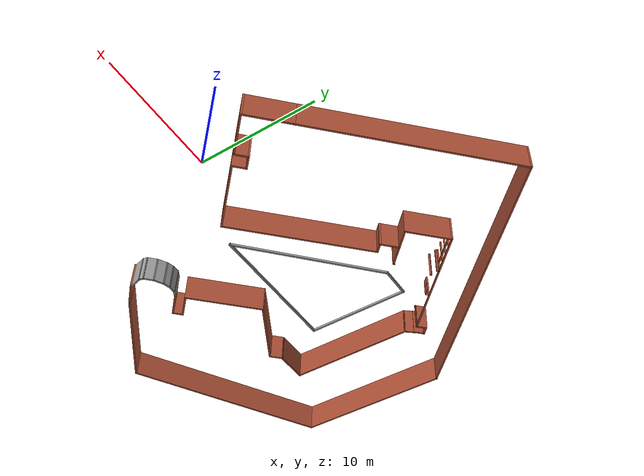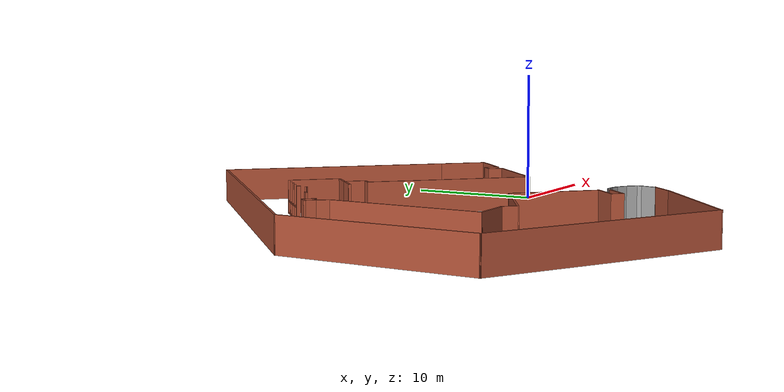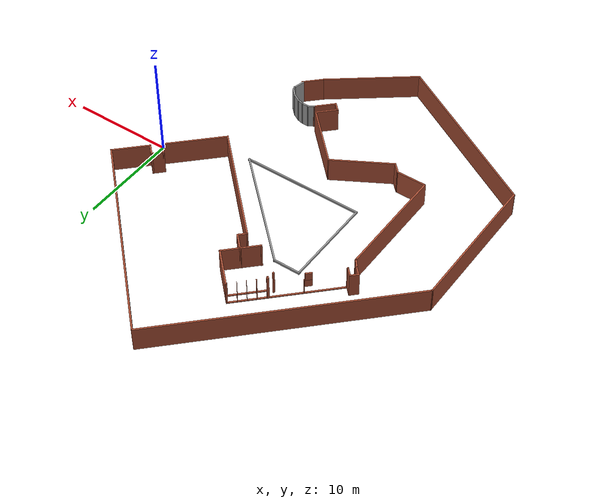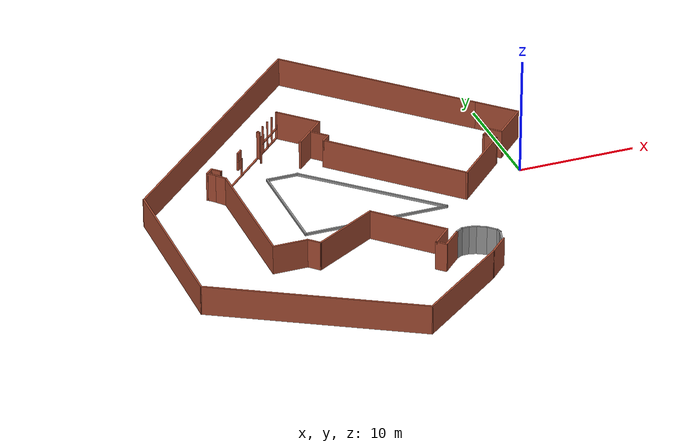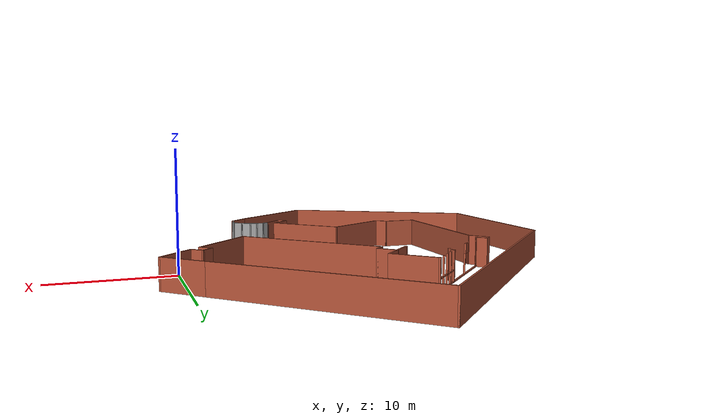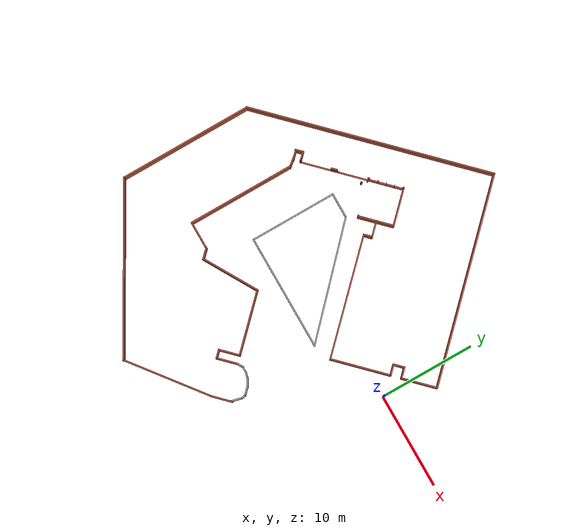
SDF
<?xml version='1.0'?>
<sdf version='1.6'>
  <model name='BusEngI'>
    <pose frame=''>-14.665 0.052975 0 0 -0 0</pose>
    <link name='Wall_137'>
      <pose frame=''>-3.28805 10.6093 0 0 -0 0.785398</pose>
      <visual name='Wall_137_Visual_0'>
        <pose frame=''>-1.7627 0 1.25 0 -0 0</pose>
        <geometry>
          <box>
            <size>0.224593 0.15 2.5</size>
          </box>
        </geometry>
        <material>
          <script>
            <uri>file://media/materials/scripts/gazebo.material</uri>
            <name>Gazebo/Bricks</name>
          </script>
          <ambient>1 1 1 1</ambient>
        </material>
        <meta>
          <layer>0</layer>
        </meta>
      </visual>
      <collision name='Wall_137_Collision_0'>
        <geometry>
          <box>
            <size>0.224593 0.15 2.5</size>
          </box>
        </geometry>
        <pose frame=''>-1.7627 0 1.25 0 -0 0</pose>
      </collision>
      <visual name='Wall_137_Visual_1'>
        <pose frame=''>0.112296 0 0.05 0 -0 0</pose>
        <geometry>
          <box>
            <size>3.52541 0.15 0.1</size>
          </box>
        </geometry>
        <material>
          <script>
            <uri>file://media/materials/scripts/gazebo.material</uri>
            <name>Gazebo/Bricks</name>
          </script>
          <ambient>1 1 1 1</ambient>
        </material>
        <meta>
          <layer>0</layer>
        </meta>
      </visual>
      <collision name='Wall_137_Collision_1'>
        <geometry>
          <box>
            <size>3.52541 0.15 0.1</size>
          </box>
        </geometry>
        <pose frame=''>0.112296 0 0.05 0 -0 0</pose>
      </collision>
      <visual name='Wall_137_Visual_2'>
        <pose frame=''>-0.809097 0 1.3 0 -0 0</pose>
        <geometry>
          <box>
            <size>0.082621 0.15 2.4</size>
          </box>
        </geometry>
        <material>
          <script>
            <uri>file://media/materials/scripts/gazebo.material</uri>
            <name>Gazebo/Bricks</name>
          </script>
          <ambient>1 1 1 1</ambient>
        </material>
        <meta>
          <layer>0</layer>
        </meta>
      </visual>
      <collision name='Wall_137_Collision_2'>
        <geometry>
          <box>
            <size>0.082621 0.15 2.4</size>
          </box>
        </geometry>
        <pose frame=''>-0.809097 0 1.3 0 -0 0</pose>
      </collision>
      <visual name='Wall_137_Visual_3'>
        <pose frame=''>0.045943 0 1.3 0 -0 0</pose>
        <geometry>
          <box>
            <size>0.027458 0.15 2.4</size>
          </box>
        </geometry>
        <material>
          <script>
            <uri>file://media/materials/scripts/gazebo.material</uri>
            <name>Gazebo/Bricks</name>
          </script>
          <ambient>1 1 1 1</ambient>
        </material>
        <meta>
          <layer>0</layer>
        </meta>
      </visual>
      <collision name='Wall_137_Collision_3'>
        <geometry>
          <box>
            <size>0.027458 0.15 2.4</size>
          </box>
        </geometry>
        <pose frame=''>0.045943 0 1.3 0 -0 0</pose>
      </collision>
      <visual name='Wall_137_Visual_4'>
        <pose frame=''>0.8734 0 1.3 0 -0 0</pose>
        <geometry>
          <box>
            <size>0.027457 0.15 2.4</size>
          </box>
        </geometry>
        <material>
          <script>
            <uri>file://media/materials/scripts/gazebo.material</uri>
            <name>Gazebo/Bricks</name>
          </script>
          <ambient>1 1 1 1</ambient>
        </material>
        <meta>
          <layer>0</layer>
        </meta>
      </visual>
      <collision name='Wall_137_Collision_4'>
        <geometry>
          <box>
            <size>0.027457 0.15 2.4</size>
          </box>
        </geometry>
        <pose frame=''>0.8734 0 1.3 0 -0 0</pose>
      </collision>
      <visual name='Wall_137_Visual_5'>
        <pose frame=''>1.79486 0 1.3 0 -0 0</pose>
        <geometry>
          <box>
            <size>0.16029 0.15 2.4</size>
          </box>
        </geometry>
        <material>
          <script>
            <uri>file://media/materials/scripts/gazebo.material</uri>
            <name>Gazebo/Bricks</name>
          </script>
          <ambient>1 1 1 1</ambient>
        </material>
        <meta>
          <layer>0</layer>
        </meta>
      </visual>
      <collision name='Wall_137_Collision_5'>
        <geometry>
          <box>
            <size>0.16029 0.15 2.4</size>
          </box>
        </geometry>
        <pose frame=''>1.79486 0 1.3 0 -0 0</pose>
      </collision>
      <visual name='Wall_137_Visual_6'>
        <pose frame=''>0.900919 0 0.55 0 -0 0</pose>
        <geometry>
          <box>
            <size>0.027581 0.15 0.9</size>
          </box>
        </geometry>
        <material>
          <script>
            <uri>file://media/materials/scripts/gazebo.material</uri>
            <name>Gazebo/Bricks</name>
          </script>
          <ambient>1 1 1 1</ambient>
        </material>
        <meta>
          <layer>0</layer>
        </meta>
      </visual>
      <collision name='Wall_137_Collision_6'>
        <geometry>
          <box>
            <size>0.027581 0.15 0.9</size>
          </box>
        </geometry>
        <pose frame=''>0.900919 0 0.55 0 -0 0</pose>
      </collision>
      <visual name='Wall_137_Visual_7'>
        <pose frame=''>-1.25041 0 0.95 0 -0 0</pose>
        <geometry>
          <box>
            <size>0.8 0.15 0.1</size>
          </box>
        </geometry>
        <material>
          <script>
            <uri>file://media/materials/scripts/gazebo.material</uri>
            <name>Gazebo/Bricks</name>
          </script>
          <ambient>1 1 1 1</ambient>
        </material>
        <meta>
          <layer>0</layer>
        </meta>
      </visual>
      <collision name='Wall_137_Collision_7'>
        <geometry>
          <box>
            <size>0.8 0.15 0.1</size>
          </box>
        </geometry>
        <pose frame=''>-1.25041 0 0.95 0 -0 0</pose>
      </collision>
      <visual name='Wall_137_Visual_8'>
        <pose frame=''>-0.367786 0 0.95 0 -0 0</pose>
        <geometry>
          <box>
            <size>0.8 0.15 0.1</size>
          </box>
        </geometry>
        <material>
          <script>
            <uri>file://media/materials/scripts/gazebo.material</uri>
            <name>Gazebo/Bricks</name>
          </script>
          <ambient>1 1 1 1</ambient>
        </material>
        <meta>
          <layer>0</layer>
        </meta>
      </visual>
      <collision name='Wall_137_Collision_8'>
        <geometry>
          <box>
            <size>0.8 0.15 0.1</size>
          </box>
        </geometry>
        <pose frame=''>-0.367786 0 0.95 0 -0 0</pose>
      </collision>
      <visual name='Wall_137_Visual_9'>
        <pose frame=''>0.459672 0 0.95 0 -0 0</pose>
        <geometry>
          <box>
            <size>0.8 0.15 0.1</size>
          </box>
        </geometry>
        <material>
          <script>
            <uri>file://media/materials/scripts/gazebo.material</uri>
            <name>Gazebo/Bricks</name>
          </script>
          <ambient>1 1 1 1</ambient>
        </material>
        <meta>
          <layer>0</layer>
        </meta>
      </visual>
      <collision name='Wall_137_Collision_9'>
        <geometry>
          <box>
            <size>0.8 0.15 0.1</size>
          </box>
        </geometry>
        <pose frame=''>0.459672 0 0.95 0 -0 0</pose>
      </collision>
      <visual name='Wall_137_Visual_10'>
        <pose frame=''>1.31471 0 0.95 0 -0 0</pose>
        <geometry>
          <box>
            <size>0.8 0.15 0.1</size>
          </box>
        </geometry>
        <material>
          <script>
            <uri>file://media/materials/scripts/gazebo.material</uri>
            <name>Gazebo/Bricks</name>
          </script>
          <ambient>1 1 1 1</ambient>
        </material>
        <meta>
          <layer>0</layer>
        </meta>
      </visual>
      <collision name='Wall_137_Collision_10'>
        <geometry>
          <box>
            <size>0.8 0.15 0.1</size>
          </box>
        </geometry>
        <pose frame=''>1.31471 0 0.95 0 -0 0</pose>
      </collision>
      <visual name='Wall_137_Visual_11'>
        <pose frame=''>1.70092 0 1.75 0 -0 0</pose>
        <geometry>
          <box>
            <size>0.027581 0.15 1.5</size>
          </box>
        </geometry>
        <material>
          <script>
            <uri>file://media/materials/scripts/gazebo.material</uri>
            <name>Gazebo/Bricks</name>
          </script>
          <ambient>1 1 1 1</ambient>
        </material>
        <meta>
          <layer>0</layer>
        </meta>
      </visual>
      <collision name='Wall_137_Collision_11'>
        <geometry>
          <box>
            <size>0.027581 0.15 1.5</size>
          </box>
        </geometry>
        <pose frame=''>1.70092 0 1.75 0 -0 0</pose>
      </collision>
    </link>
    <link name='Wall_138'>
      <collision name='Wall_138_Collision'>
        <geometry>
          <box>
            <size>4 0.15 2.5</size>
          </box>
        </geometry>
        <pose frame=''>0 0 1.25 0 -0 0</pose>
      </collision>
      <visual name='Wall_138_Visual'>
        <pose frame=''>0 0 1.25 0 -0 0</pose>
        <geometry>
          <box>
            <size>4 0.15 2.5</size>
          </box>
        </geometry>
        <material>
          <script>
            <uri>file://media/materials/scripts/gazebo.material</uri>
            <name>Gazebo/Bricks</name>
          </script>
          <ambient>1 1 1 1</ambient>
        </material>
        <meta>
          <layer>0</layer>
        </meta>
      </visual>
      <pose frame=''>-0.654075 10.5209 0 0 0 -0.785398</pose>
    </link>
    <link name='Wall_139'>
      <collision name='Wall_139_Collision'>
        <geometry>
          <box>
            <size>1.9 0.15 2.5</size>
          </box>
        </geometry>
        <pose frame=''>0 0 1.25 0 -0 0</pose>
      </collision>
      <visual name='Wall_139_Visual'>
        <pose frame=''>0 0 1.25 0 -0 0</pose>
        <geometry>
          <box>
            <size>1.9 0.15 2.5</size>
          </box>
        </geometry>
        <material>
          <script>
            <uri>file://media/materials/scripts/gazebo.material</uri>
            <name>Gazebo/Bricks</name>
          </script>
          <ambient>1 1 1 1</ambient>
        </material>
        <meta>
          <layer>0</layer>
        </meta>
      </visual>
      <pose frame=''>0.088388 8.54098 0 0 0 -2.35619</pose>
    </link>
    <link name='Wall_19'>
      <collision name='Wall_19_Collision'>
        <geometry>
          <box>
            <size>0.15 0.15 2.5</size>
          </box>
        </geometry>
        <pose frame=''>0 0 1.25 0 -0 0</pose>
      </collision>
      <visual name='Wall_19_Visual'>
        <pose frame=''>0 0 1.25 0 -0 0</pose>
        <geometry>
          <box>
            <size>0.15 0.15 2.5</size>
          </box>
        </geometry>
        <material>
          <script>
            <uri>file://media/materials/scripts/gazebo.material</uri>
            <name>Gazebo/Bricks</name>
          </script>
          <ambient>1 1 1 1</ambient>
        </material>
        <meta>
          <layer>0</layer>
        </meta>
      </visual>
      <pose frame=''>-4.56098 8.57072 0 0 -0 0</pose>
    </link>
    <link name='Wall_225'>
      <collision name='Wall_225_Collision'>
        <geometry>
          <box>
            <size>18 0.15 2.5</size>
          </box>
        </geometry>
        <pose frame=''>0 0 1.25 0 -0 0</pose>
      </collision>
      <visual name='Wall_225_Visual'>
        <pose frame=''>0 0 1.25 0 -0 0</pose>
        <geometry>
          <box>
            <size>18 0.15 2.5</size>
          </box>
        </geometry>
        <material>
          <script>
            <uri>file://media/materials/scripts/gazebo.material</uri>
            <name>Gazebo/Bricks</name>
          </script>
          <ambient>1 1 1 1</ambient>
        </material>
        <meta>
          <layer>0</layer>
        </meta>
      </visual>
      <pose frame=''>7.51301 13.9503 0 0 -0 2.35619</pose>
    </link>
    <link name='Wall_226'>
      <collision name='Wall_226_Collision'>
        <geometry>
          <box>
            <size>25.25 0.15 2.5</size>
          </box>
        </geometry>
        <pose frame=''>0 0 1.25 0 -0 0</pose>
      </collision>
      <visual name='Wall_226_Visual'>
        <pose frame=''>0 0 1.25 0 -0 0</pose>
        <geometry>
          <box>
            <size>25.25 0.15 2.5</size>
          </box>
        </geometry>
        <material>
          <script>
            <uri>file://media/materials/scripts/gazebo.material</uri>
            <name>Gazebo/Bricks</name>
          </script>
          <ambient>1 1 1 1</ambient>
        </material>
        <meta>
          <layer>0</layer>
        </meta>
      </visual>
      <pose frame=''>-7.67211 11.3871 0 0 0 -2.35619</pose>
    </link>
    <link name='Wall_227'>
      <collision name='Wall_227_Collision'>
        <geometry>
          <box>
            <size>14 0.15 2.5</size>
          </box>
        </geometry>
        <pose frame=''>0 0 1.25 0 -0 0</pose>
      </collision>
      <visual name='Wall_227_Visual'>
        <pose frame=''>0 0 1.25 0 -0 0</pose>
        <geometry>
          <box>
            <size>14 0.15 2.5</size>
          </box>
        </geometry>
        <material>
          <script>
            <uri>file://media/materials/scripts/gazebo.material</uri>
            <name>Gazebo/Bricks</name>
          </script>
          <ambient>1 1 1 1</ambient>
        </material>
        <meta>
          <layer>0</layer>
        </meta>
      </visual>
      <pose frame=''>-16.5463 -4.41211 0 0 0 -1.5708</pose>
    </link>
    <link name='Wall_228'>
      <collision name='Wall_228_Collision'>
        <geometry>
          <box>
            <size>18 0.15 2.5</size>
          </box>
        </geometry>
        <pose frame=''>0 0 1.25 0 -0 0</pose>
      </collision>
      <visual name='Wall_228_Visual'>
        <pose frame=''>0 0 1.25 0 -0 0</pose>
        <geometry>
          <box>
            <size>18 0.15 2.5</size>
          </box>
        </geometry>
        <material>
          <script>
            <uri>file://media/materials/scripts/gazebo.material</uri>
            <name>Gazebo/Bricks</name>
          </script>
          <ambient>1 1 1 1</ambient>
        </material>
        <meta>
          <layer>0</layer>
        </meta>
      </visual>
      <pose frame=''>-8.81702 -15.7996 0 0 0 -0.523599</pose>
    </link>
    <link name='Wall_229'>
      <collision name='Wall_229_Collision'>
        <geometry>
          <box>
            <size>9.44818 0.15 2.5</size>
          </box>
        </geometry>
        <pose frame=''>0 0 1.25 0 -0 0</pose>
      </collision>
      <visual name='Wall_229_Visual'>
        <pose frame=''>0 0 1.25 0 -0 0</pose>
        <geometry>
          <box>
            <size>9.44818 0.15 2.5</size>
          </box>
        </geometry>
        <material>
          <script>
            <uri>file://media/materials/scripts/gazebo.material</uri>
            <name>Gazebo/Bricks</name>
          </script>
          <ambient>1 1 1 1</ambient>
        </material>
        <meta>
          <layer>0</layer>
        </meta>
      </visual>
      <pose frame=''>2.58674 -17.4139 0 0 -0 0.659388</pose>
    </link>
    <link name='Wall_357'>
      <pose frame=''>-3.19966 7.97529 0 0 0 -0.785398</pose>
      <visual name='Wall_357_Visual_0'>
        <pose frame=''>-1.84824 0 1.25 0 -0 0</pose>
        <geometry>
          <box>
            <size>0.303512 0.15 2.5</size>
          </box>
        </geometry>
        <material>
          <script>
            <uri>file://media/materials/scripts/gazebo.material</uri>
            <name>Gazebo/Bricks</name>
          </script>
          <ambient>1 1 1 1</ambient>
        </material>
        <meta>
          <layer>0</layer>
        </meta>
      </visual>
      <collision name='Wall_357_Collision_0'>
        <geometry>
          <box>
            <size>0.303512 0.15 2.5</size>
          </box>
        </geometry>
        <pose frame=''>-1.84824 0 1.25 0 -0 0</pose>
      </collision>
      <visual name='Wall_357_Visual_1'>
        <pose frame=''>1.90176 0 1.25 0 -0 0</pose>
        <geometry>
          <box>
            <size>0.196488 0.15 2.5</size>
          </box>
        </geometry>
        <material>
          <script>
            <uri>file://media/materials/scripts/gazebo.material</uri>
            <name>Gazebo/Bricks</name>
          </script>
          <ambient>1 1 1 1</ambient>
        </material>
        <meta>
          <layer>0</layer>
        </meta>
      </visual>
      <collision name='Wall_357_Collision_1'>
        <geometry>
          <box>
            <size>0.196488 0.15 2.5</size>
          </box>
        </geometry>
        <pose frame=''>1.90176 0 1.25 0 -0 0</pose>
      </collision>
    </link>
    <link name='Wall_359'>
      <collision name='Wall_359_Collision'>
        <geometry>
          <box>
            <size>2.743 0.15 0.2</size>
          </box>
        </geometry>
        <pose frame=''>0 0 0.1 0 -0 0</pose>
      </collision>
      <visual name='Wall_359_Visual'>
        <pose frame=''>0 0 0.1 0 -0 0</pose>
        <geometry>
          <box>
            <size>2.743 0.15 0.2</size>
          </box>
        </geometry>
        <material>
          <script>
            <uri>file://media/materials/scripts/gazebo.material</uri>
            <name>Gazebo/Grey</name>
          </script>
          <ambient>1 1 1 1</ambient>
        </material>
        <meta>
          <layer>0</layer>
        </meta>
      </visual>
      <pose frame=''>-3.79245 5.63403 0 0 -0 0</pose>
    </link>
    <link name='Wall_361'>
      <collision name='Wall_361_Collision'>
        <geometry>
          <box>
            <size>9.144 0.15 0.2</size>
          </box>
        </geometry>
        <pose frame=''>0 0 0.1 0 -0 0</pose>
      </collision>
      <visual name='Wall_361_Visual'>
        <pose frame=''>0 0 0.1 0 -0 0</pose>
        <geometry>
          <box>
            <size>9.144 0.15 0.2</size>
          </box>
        </geometry>
        <material>
          <script>
            <uri>file://media/materials/scripts/gazebo.material</uri>
            <name>Gazebo/Grey</name>
          </script>
          <ambient>1 1 1 1</ambient>
        </material>
        <meta>
          <layer>0</layer>
        </meta>
      </visual>
      <pose frame=''>-5.08895 1.13702 0 0 0 -1.5708</pose>
    </link>
    <link name='Wall_363'>
      <collision name='Wall_363_Collision'>
        <geometry>
          <box>
            <size>12.192 0.15 0.2</size>
          </box>
        </geometry>
        <pose frame=''>0 0 0.1 0 -0 0</pose>
      </collision>
      <visual name='Wall_363_Visual'>
        <pose frame=''>0 0 0.1 0 -0 0</pose>
        <geometry>
          <box>
            <size>12.192 0.15 0.2</size>
          </box>
        </geometry>
        <material>
          <script>
            <uri>file://media/materials/scripts/gazebo.material</uri>
            <name>Gazebo/Grey</name>
          </script>
          <ambient>1 1 1 1</ambient>
        </material>
        <meta>
          <layer>0</layer>
        </meta>
      </visual>
      <pose frame=''>0.932046 -3.35997 0 0 -0 0</pose>
    </link>
    <link name='Wall_365'>
      <collision name='Wall_365_Collision'>
        <geometry>
          <box>
            <size>13.1951 0.15 0.2</size>
          </box>
        </geometry>
        <pose frame=''>0 0 0.1 0 -0 0</pose>
      </collision>
      <visual name='Wall_365_Visual'>
        <pose frame=''>0 0 0.1 0 -0 0</pose>
        <geometry>
          <box>
            <size>13.1951 0.15 0.2</size>
          </box>
        </geometry>
        <material>
          <script>
            <uri>file://media/materials/scripts/gazebo.material</uri>
            <name>Gazebo/Grey</name>
          </script>
          <ambient>1 1 1 1</ambient>
        </material>
        <meta>
          <layer>0</layer>
        </meta>
      </visual>
      <pose frame=''>2.22855 1.13702 0 0 -0 2.38086</pose>
    </link>
    <link name='Wall_37'>
      <pose frame=''>-6.98268 6.91463 0 0 0 -2.35619</pose>
      <visual name='Wall_37_Visual_0'>
        <pose frame=''>0 0 0.05 0 -0 0</pose>
        <geometry>
          <box>
            <size>7 0.15 0.1</size>
          </box>
        </geometry>
        <material>
          <script>
            <uri>file://media/materials/scripts/gazebo.material</uri>
            <name>Gazebo/Bricks</name>
          </script>
          <ambient>1 1 1 1</ambient>
        </material>
        <meta>
          <layer>0</layer>
        </meta>
      </visual>
      <collision name='Wall_37_Collision_0'>
        <geometry>
          <box>
            <size>7 0.15 0.1</size>
          </box>
        </geometry>
        <pose frame=''>0 0 0.05 0 -0 0</pose>
      </collision>
      <visual name='Wall_37_Visual_1'>
        <pose frame=''>-0.352952 0 0.9 0 -0 0</pose>
        <geometry>
          <box>
            <size>0.044216 0.15 1.6</size>
          </box>
        </geometry>
        <material>
          <script>
            <uri>file://media/materials/scripts/gazebo.material</uri>
            <name>Gazebo/Bricks</name>
          </script>
          <ambient>1 1 1 1</ambient>
        </material>
        <meta>
          <layer>0</layer>
        </meta>
      </visual>
      <collision name='Wall_37_Collision_1'>
        <geometry>
          <box>
            <size>0.044216 0.15 1.6</size>
          </box>
        </geometry>
        <pose frame=''>-0.352952 0 0.9 0 -0 0</pose>
      </collision>
      <visual name='Wall_37_Visual_2'>
        <pose frame=''>3.46799 0 1.3 0 -0 0</pose>
        <geometry>
          <box>
            <size>0.064027 0.15 2.4</size>
          </box>
        </geometry>
        <material>
          <script>
            <uri>file://media/materials/scripts/gazebo.material</uri>
            <name>Gazebo/Bricks</name>
          </script>
          <ambient>1 1 1 1</ambient>
        </material>
        <meta>
          <layer>0</layer>
        </meta>
      </visual>
      <collision name='Wall_37_Collision_2'>
        <geometry>
          <box>
            <size>0.064027 0.15 2.4</size>
          </box>
        </geometry>
        <pose frame=''>3.46799 0 1.3 0 -0 0</pose>
      </collision>
      <visual name='Wall_37_Visual_3'>
        <pose frame=''>0.018902 0 1.3 0 -0 0</pose>
        <geometry>
          <box>
            <size>0.699493 0.15 0.8</size>
          </box>
        </geometry>
        <material>
          <script>
            <uri>file://media/materials/scripts/gazebo.material</uri>
            <name>Gazebo/Bricks</name>
          </script>
          <ambient>1 1 1 1</ambient>
        </material>
        <meta>
          <layer>0</layer>
        </meta>
      </visual>
      <collision name='Wall_37_Collision_3'>
        <geometry>
          <box>
            <size>0.699493 0.15 0.8</size>
          </box>
        </geometry>
        <pose frame=''>0.018902 0 1.3 0 -0 0</pose>
      </collision>
      <visual name='Wall_37_Visual_4'>
        <pose frame=''>0.045035 0 2.1 0 -0 0</pose>
        <geometry>
          <box>
            <size>0.647227 0.15 0.8</size>
          </box>
        </geometry>
        <material>
          <script>
            <uri>file://media/materials/scripts/gazebo.material</uri>
            <name>Gazebo/Bricks</name>
          </script>
          <ambient>1 1 1 1</ambient>
        </material>
        <meta>
          <layer>0</layer>
        </meta>
      </visual>
      <collision name='Wall_37_Collision_4'>
        <geometry>
          <box>
            <size>0.647227 0.15 0.8</size>
          </box>
        </geometry>
        <pose frame=''>0.045035 0 2.1 0 -0 0</pose>
      </collision>
    </link>
    <link name='Wall_38'>
      <collision name='Wall_38_Collision'>
        <geometry>
          <box>
            <size>0.15 0.15 2.5</size>
          </box>
        </geometry>
        <pose frame=''>0 0 1.25 0 -0 0</pose>
      </collision>
      <visual name='Wall_38_Visual'>
        <pose frame=''>0 0 1.25 0 -0 0</pose>
        <geometry>
          <box>
            <size>0.15 0.15 2.5</size>
          </box>
        </geometry>
        <material>
          <script>
            <uri>file://media/materials/scripts/gazebo.material</uri>
            <name>Gazebo/Bricks</name>
          </script>
          <ambient>1 1 1 1</ambient>
        </material>
        <meta>
          <layer>0</layer>
        </meta>
      </visual>
      <pose frame=''>-9.40452 4.49279 0 0 -0 0</pose>
    </link>
    <link name='Wall_43'>
      <collision name='Wall_43_Collision'>
        <geometry>
          <box>
            <size>1 0.15 2.5</size>
          </box>
        </geometry>
        <pose frame=''>0 0 1.25 0 -0 0</pose>
      </collision>
      <visual name='Wall_43_Visual'>
        <pose frame=''>0 0 1.25 0 -0 0</pose>
        <geometry>
          <box>
            <size>1 0.15 2.5</size>
          </box>
        </geometry>
        <material>
          <script>
            <uri>file://media/materials/scripts/gazebo.material</uri>
            <name>Gazebo/Bricks</name>
          </script>
          <ambient>1 1 1 1</ambient>
        </material>
        <meta>
          <layer>0</layer>
        </meta>
      </visual>
      <pose frame=''>-9.70504 4.79331 0 0 -0 2.35619</pose>
    </link>
    <link name='Wall_57'>
      <collision name='Wall_57_Collision'>
        <geometry>
          <box>
            <size>0.904063 0.15 2.5</size>
          </box>
        </geometry>
        <pose frame=''>0 0 1.25 0 -0 0</pose>
      </collision>
      <visual name='Wall_57_Visual'>
        <pose frame=''>0 0 1.25 0 -0 0</pose>
        <geometry>
          <box>
            <size>0.904063 0.15 2.5</size>
          </box>
        </geometry>
        <material>
          <script>
            <uri>file://media/materials/scripts/gazebo.material</uri>
            <name>Gazebo/Bricks</name>
          </script>
          <ambient>1 1 1 1</ambient>
        </material>
        <meta>
          <layer>0</layer>
        </meta>
      </visual>
      <pose frame=''>-10.2722 4.82723 0 0 0 -2.35619</pose>
    </link>
    <link name='Wall_58'>
      <collision name='Wall_58_Collision'>
        <geometry>
          <box>
            <size>1 0.15 2.5</size>
          </box>
        </geometry>
        <pose frame=''>0 0 1.25 0 -0 0</pose>
      </collision>
      <visual name='Wall_58_Visual'>
        <pose frame=''>0 0 1.25 0 -0 0</pose>
        <geometry>
          <box>
            <size>1 0.15 2.5</size>
          </box>
        </geometry>
        <material>
          <script>
            <uri>file://media/materials/scripts/gazebo.material</uri>
            <name>Gazebo/Bricks</name>
          </script>
          <ambient>1 1 1 1</ambient>
        </material>
        <meta>
          <layer>0</layer>
        </meta>
      </visual>
      <pose frame=''>-10.2043 4.26011 0 0 0 -0.785398</pose>
    </link>
    <link name='Wall_59'>
      <collision name='Wall_59_Collision'>
        <geometry>
          <box>
            <size>1.0054 0.15 2.5</size>
          </box>
        </geometry>
        <pose frame=''>0 0 1.25 0 -0 0</pose>
      </collision>
      <visual name='Wall_59_Visual'>
        <pose frame=''>0 0 1.25 0 -0 0</pose>
        <geometry>
          <box>
            <size>1.0054 0.15 2.5</size>
          </box>
        </geometry>
        <material>
          <script>
            <uri>file://media/materials/scripts/gazebo.material</uri>
            <name>Gazebo/Bricks</name>
          </script>
          <ambient>1 1 1 1</ambient>
        </material>
        <meta>
          <layer>0</layer>
        </meta>
      </visual>
      <pose frame=''>-9.67112 3.62515 0 0 0 -0.89779</pose>
    </link>
    <link name='Wall_60'>
      <collision name='Wall_60_Collision'>
        <geometry>
          <box>
            <size>11.25 0.15 2.5</size>
          </box>
        </geometry>
        <pose frame=''>0 0 1.25 0 -0 0</pose>
      </collision>
      <visual name='Wall_60_Visual'>
        <pose frame=''>0 0 1.25 0 -0 0</pose>
        <geometry>
          <box>
            <size>11.25 0.15 2.5</size>
          </box>
        </geometry>
        <material>
          <script>
            <uri>file://media/materials/scripts/gazebo.material</uri>
            <name>Gazebo/Bricks</name>
          </script>
          <ambient>1 1 1 1</ambient>
        </material>
        <meta>
          <layer>0</layer>
        </meta>
      </visual>
      <pose frame=''>-9.40452 -2.25929 0 0 0 -1.5708</pose>
    </link>
    <link name='Wall_61'>
      <collision name='Wall_61_Collision'>
        <geometry>
          <box>
            <size>3 0.15 2.5</size>
          </box>
        </geometry>
        <pose frame=''>0 0 1.25 0 -0 0</pose>
      </collision>
      <visual name='Wall_61_Visual'>
        <pose frame=''>0 0 1.25 0 -0 0</pose>
        <geometry>
          <box>
            <size>3 0.15 2.5</size>
          </box>
        </geometry>
        <material>
          <script>
            <uri>file://media/materials/scripts/gazebo.material</uri>
            <name>Gazebo/Bricks</name>
          </script>
          <ambient>1 1 1 1</ambient>
        </material>
        <meta>
          <layer>0</layer>
        </meta>
      </visual>
      <pose frame=''>-7.97952 -7.80929 0 0 -0 0</pose>
    </link>
    <link name='Wall_62'>
      <collision name='Wall_62_Collision'>
        <geometry>
          <box>
            <size>1.25 0.15 2.5</size>
          </box>
        </geometry>
        <pose frame=''>0 0 1.25 0 -0 0</pose>
      </collision>
      <visual name='Wall_62_Visual'>
        <pose frame=''>0 0 1.25 0 -0 0</pose>
        <geometry>
          <box>
            <size>1.25 0.15 2.5</size>
          </box>
        </geometry>
        <material>
          <script>
            <uri>file://media/materials/scripts/gazebo.material</uri>
            <name>Gazebo/Bricks</name>
          </script>
          <ambient>1 1 1 1</ambient>
        </material>
        <meta>
          <layer>0</layer>
        </meta>
      </visual>
      <pose frame=''>-6.16561 -8.1982 0 0 0 -0.785398</pose>
    </link>
    <link name='Wall_63'>
      <collision name='Wall_63_Collision'>
        <geometry>
          <box>
            <size>6.25 0.15 2.5</size>
          </box>
        </geometry>
        <pose frame=''>0 0 1.25 0 -0 0</pose>
      </collision>
      <visual name='Wall_63_Visual'>
        <pose frame=''>0 0 1.25 0 -0 0</pose>
        <geometry>
          <box>
            <size>6.25 0.15 2.5</size>
          </box>
        </geometry>
        <material>
          <script>
            <uri>file://media/materials/scripts/gazebo.material</uri>
            <name>Gazebo/Bricks</name>
          </script>
          <ambient>1 1 1 1</ambient>
        </material>
        <meta>
          <layer>0</layer>
        </meta>
      </visual>
      <pose frame=''>-3.13532 -7.06211 0 0 -0 0.523599</pose>
    </link>
    <link name='Wall_64'>
      <collision name='Wall_64_Collision'>
        <geometry>
          <box>
            <size>6.75 0.15 2.5</size>
          </box>
        </geometry>
        <pose frame=''>0 0 1.25 0 -0 0</pose>
      </collision>
      <visual name='Wall_64_Visual'>
        <pose frame=''>0 0 1.25 0 -0 0</pose>
        <geometry>
          <box>
            <size>6.75 0.15 2.5</size>
          </box>
        </geometry>
        <material>
          <script>
            <uri>file://media/materials/scripts/gazebo.material</uri>
            <name>Gazebo/Bricks</name>
          </script>
          <ambient>1 1 1 1</ambient>
        </material>
        <meta>
          <layer>0</layer>
        </meta>
      </visual>
      <pose frame=''>1.8395 -7.87056 0 0 0 -0.785398</pose>
    </link>
    <link name='Wall_65'>
      <collision name='Wall_65_Collision'>
        <geometry>
          <box>
            <size>2.25 0.15 2.5</size>
          </box>
        </geometry>
        <pose frame=''>0 0 1.25 0 -0 0</pose>
      </collision>
      <visual name='Wall_65_Visual'>
        <pose frame=''>0 0 1.25 0 -0 0</pose>
        <geometry>
          <box>
            <size>2.25 0.15 2.5</size>
          </box>
        </geometry>
        <material>
          <script>
            <uri>file://media/materials/scripts/gazebo.material</uri>
            <name>Gazebo/Bricks</name>
          </script>
          <ambient>1 1 1 1</ambient>
        </material>
        <meta>
          <layer>0</layer>
        </meta>
      </visual>
      <pose frame=''>3.43049 -10.9465 0 0 0 -2.35619</pose>
    </link>
    <link name='Wall_66'>
      <collision name='Wall_66_Collision'>
        <geometry>
          <box>
            <size>1 0.15 2.5</size>
          </box>
        </geometry>
        <pose frame=''>0 0 1.25 0 -0 0</pose>
      </collision>
      <visual name='Wall_66_Visual'>
        <pose frame=''>0 0 1.25 0 -0 0</pose>
        <geometry>
          <box>
            <size>1 0.15 2.5</size>
          </box>
        </geometry>
        <material>
          <script>
            <uri>file://media/materials/scripts/gazebo.material</uri>
            <name>Gazebo/Bricks</name>
          </script>
          <ambient>1 1 1 1</ambient>
        </material>
        <meta>
          <layer>0</layer>
        </meta>
      </visual>
      <pose frame=''>2.98855 -11.9895 0 0 0 -0.785398</pose>
    </link>
    <link name='Wall_67'>
      <collision name='Wall_67_Collision'>
        <geometry>
          <box>
            <size>2.25 0.15 2.5</size>
          </box>
        </geometry>
        <pose frame=''>0 0 1.25 0 -0 0</pose>
      </collision>
      <visual name='Wall_67_Visual'>
        <pose frame=''>0 0 1.25 0 -0 0</pose>
        <geometry>
          <box>
            <size>2.25 0.15 2.5</size>
          </box>
        </geometry>
        <material>
          <script>
            <uri>file://media/materials/scripts/gazebo.material</uri>
            <name>Gazebo/Bricks</name>
          </script>
          <ambient>1 1 1 1</ambient>
        </material>
        <meta>
          <layer>0</layer>
        </meta>
      </visual>
      <pose frame=''>4.03153 -11.5475 0 0 -0 0.785398</pose>
    </link>
    <link name='Wall_68'>
      <collision name='Wall_68_Collision'>
        <geometry>
          <box>
            <size>0.75 0.15 2.5</size>
          </box>
        </geometry>
        <pose frame=''>0 0 1.25 0 -0 0</pose>
      </collision>
      <visual name='Wall_68_Visual'>
        <pose frame=''>0 0 1.25 0 -0 0</pose>
        <geometry>
          <box>
            <size>0.75 0.15 2.5</size>
          </box>
        </geometry>
        <material>
          <script>
            <uri>file://media/materials/scripts/gazebo.material</uri>
            <name>Gazebo/Grey</name>
          </script>
          <ambient>0 0 0 1</ambient>
        </material>
        <meta>
          <layer>0</layer>
        </meta>
      </visual>
      <pose frame=''>5.0338 -10.6551 0 0 -0 0.523599</pose>
    </link>
    <link name='Wall_69'>
      <collision name='Wall_69_Collision'>
        <geometry>
          <box>
            <size>0.75 0.15 2.5</size>
          </box>
        </geometry>
        <pose frame=''>0 0 1.25 0 -0 0</pose>
      </collision>
      <visual name='Wall_69_Visual'>
        <pose frame=''>0 0 1.25 0 -0 0</pose>
        <geometry>
          <box>
            <size>0.75 0.15 2.5</size>
          </box>
        </geometry>
        <material>
          <script>
            <uri>file://media/materials/scripts/gazebo.material</uri>
            <name>Gazebo/Grey</name>
          </script>
          <ambient>0 0 0 1</ambient>
        </material>
        <meta>
          <layer>0</layer>
        </meta>
      </visual>
      <pose frame=''>5.59361 -10.5051 0 0 -0 0</pose>
    </link>
    <link name='Wall_70'>
      <collision name='Wall_70_Collision'>
        <geometry>
          <box>
            <size>0.75 0.15 2.5</size>
          </box>
        </geometry>
        <pose frame=''>0 0 1.25 0 -0 0</pose>
      </collision>
      <visual name='Wall_70_Visual'>
        <pose frame=''>0 0 1.25 0 -0 0</pose>
        <geometry>
          <box>
            <size>0.75 0.15 2.5</size>
          </box>
        </geometry>
        <material>
          <script>
            <uri>file://media/materials/scripts/gazebo.material</uri>
            <name>Gazebo/Grey</name>
          </script>
          <ambient>0 0 0 1</ambient>
        </material>
        <meta>
          <layer>0</layer>
        </meta>
      </visual>
      <pose frame=''>6.18339 -10.5827 0 0 0 -0.261799</pose>
    </link>
    <link name='Wall_71'>
      <collision name='Wall_71_Collision'>
        <geometry>
          <box>
            <size>1 0.15 2.5</size>
          </box>
        </geometry>
        <pose frame=''>0 0 1.25 0 -0 0</pose>
      </collision>
      <visual name='Wall_71_Visual'>
        <pose frame=''>0 0 1.25 0 -0 0</pose>
        <geometry>
          <box>
            <size>1 0.15 2.5</size>
          </box>
        </geometry>
        <material>
          <script>
            <uri>file://media/materials/scripts/gazebo.material</uri>
            <name>Gazebo/Grey</name>
          </script>
          <ambient>0 0 0 1</ambient>
        </material>
        <meta>
          <layer>0</layer>
        </meta>
      </visual>
      <pose frame=''>6.84123 -10.8728 0 0 0 -0.523599</pose>
    </link>
    <link name='Wall_72'>
      <collision name='Wall_72_Collision'>
        <geometry>
          <box>
            <size>1 0.15 2.5</size>
          </box>
        </geometry>
        <pose frame=''>0 0 1.25 0 -0 0</pose>
      </collision>
      <visual name='Wall_72_Visual'>
        <pose frame=''>0 0 1.25 0 -0 0</pose>
        <geometry>
          <box>
            <size>1 0.15 2.5</size>
          </box>
        </geometry>
        <material>
          <script>
            <uri>file://media/materials/scripts/gazebo.material</uri>
            <name>Gazebo/Grey</name>
          </script>
          <ambient>0 0 0 1</ambient>
        </material>
        <meta>
          <layer>0</layer>
        </meta>
      </visual>
      <pose frame=''>7.50981 -11.3859 0 0 0 -0.785398</pose>
    </link>
    <link name='Wall_73'>
      <collision name='Wall_73_Collision'>
        <geometry>
          <box>
            <size>0.5 0.15 2.5</size>
          </box>
        </geometry>
        <pose frame=''>0 0 1.25 0 -0 0</pose>
      </collision>
      <visual name='Wall_73_Visual'>
        <pose frame=''>0 0 1.25 0 -0 0</pose>
        <geometry>
          <box>
            <size>0.5 0.15 2.5</size>
          </box>
        </geometry>
        <material>
          <script>
            <uri>file://media/materials/scripts/gazebo.material</uri>
            <name>Gazebo/Grey</name>
          </script>
          <ambient>0 0 0 1</ambient>
        </material>
        <meta>
          <layer>0</layer>
        </meta>
      </visual>
      <pose frame=''>7.85562 -11.8554 0 0 0 -1.309</pose>
    </link>
    <link name='Wall_74'>
      <collision name='Wall_74_Collision'>
        <geometry>
          <box>
            <size>1.23738 0.15 2.5</size>
          </box>
        </geometry>
        <pose frame=''>0 0 1.25 0 -0 0</pose>
      </collision>
      <visual name='Wall_74_Visual'>
        <pose frame=''>0 0 1.25 0 -0 0</pose>
        <geometry>
          <box>
            <size>1.23738 0.15 2.5</size>
          </box>
        </geometry>
        <material>
          <script>
            <uri>file://media/materials/scripts/gazebo.material</uri>
            <name>Gazebo/Grey</name>
          </script>
          <ambient>0 0 0 1</ambient>
        </material>
        <meta>
          <layer>0</layer>
        </meta>
      </visual>
      <pose frame=''>7.77195 -12.5526 0 0 0 -1.81028</pose>
    </link>
    <link name='Wall_75'>
      <collision name='Wall_75_Collision'>
        <geometry>
          <box>
            <size>2.25 0.15 2.5</size>
          </box>
        </geometry>
        <pose frame=''>0 0 1.25 0 -0 0</pose>
      </collision>
      <visual name='Wall_75_Visual'>
        <pose frame=''>0 0 1.25 0 -0 0</pose>
        <geometry>
          <box>
            <size>2.25 0.15 2.5</size>
          </box>
        </geometry>
        <material>
          <script>
            <uri>file://media/materials/scripts/gazebo.material</uri>
            <name>Gazebo/Bricks</name>
          </script>
          <ambient>1 1 1 1</ambient>
        </material>
        <meta>
          <layer>0</layer>
        </meta>
      </visual>
      <pose frame=''>7.00369 -13.8233 0 0 0 -2.35619</pose>
    </link>
    <link name='Wall_86'>
      <collision name='Wall_86_Collision'>
        <geometry>
          <box>
            <size>2 0.15 2.5</size>
          </box>
        </geometry>
        <pose frame=''>0 0 1.25 0 -0 0</pose>
      </collision>
      <visual name='Wall_86_Visual'>
        <pose frame=''>0 0 1.25 0 -0 0</pose>
        <geometry>
          <box>
            <size>2 0.15 2.5</size>
          </box>
        </geometry>
        <material>
          <script>
            <uri>file://media/materials/scripts/gazebo.material</uri>
            <name>Gazebo/Bricks</name>
          </script>
          <ambient>1 1 1 1</ambient>
        </material>
        <meta>
          <layer>0</layer>
        </meta>
      </visual>
      <pose frame=''>-1.1844 7.26818 0 0 -0 0.785398</pose>
    </link>
    <link name='Wall_87'>
      <collision name='Wall_87_Collision'>
        <geometry>
          <box>
            <size>1.75 0.15 2.5</size>
          </box>
        </geometry>
        <pose frame=''>0 0 1.25 0 -0 0</pose>
      </collision>
      <visual name='Wall_87_Visual'>
        <pose frame=''>0 0 1.25 0 -0 0</pose>
        <geometry>
          <box>
            <size>1.75 0.15 2.5</size>
          </box>
        </geometry>
        <material>
          <script>
            <uri>file://media/materials/scripts/gazebo.material</uri>
            <name>Gazebo/Bricks</name>
          </script>
          <ambient>1 1 1 1</ambient>
        </material>
        <meta>
          <layer>0</layer>
        </meta>
      </visual>
      <pose frame=''>0.035355 7.35657 0 0 0 -0.785398</pose>
    </link>
    <link name='Wall_88'>
      <collision name='Wall_88_Collision'>
        <geometry>
          <box>
            <size>1 0.15 2.5</size>
          </box>
        </geometry>
        <pose frame=''>0 0 1.25 0 -0 0</pose>
      </collision>
      <visual name='Wall_88_Visual'>
        <pose frame=''>0 0 1.25 0 -0 0</pose>
        <geometry>
          <box>
            <size>1 0.15 2.5</size>
          </box>
        </geometry>
        <material>
          <script>
            <uri>file://media/materials/scripts/gazebo.material</uri>
            <name>Gazebo/Bricks</name>
          </script>
          <ambient>1 1 1 1</ambient>
        </material>
        <meta>
          <layer>0</layer>
        </meta>
      </visual>
      <pose frame=''>0.300519 6.49037 0 0 0 -2.35619</pose>
    </link>
    <link name='Wall_89'>
      <collision name='Wall_89_Collision'>
        <geometry>
          <box>
            <size>12.75 0.15 2.5</size>
          </box>
        </geometry>
        <pose frame=''>0 0 1.25 0 -0 0</pose>
      </collision>
      <visual name='Wall_89_Visual'>
        <pose frame=''>0 0 1.25 0 -0 0</pose>
        <geometry>
          <box>
            <size>12.75 0.15 2.5</size>
          </box>
        </geometry>
        <material>
          <script>
            <uri>file://media/materials/scripts/gazebo.material</uri>
            <name>Gazebo/Bricks</name>
          </script>
          <ambient>1 1 1 1</ambient>
        </material>
        <meta>
          <layer>0</layer>
        </meta>
      </visual>
      <pose frame=''>4.45477 1.73507 0 0 0 -0.785398</pose>
    </link>
    <link name='Wall_90'>
      <collision name='Wall_90_Collision'>
        <geometry>
          <box>
            <size>6.25 0.15 2.5</size>
          </box>
        </geometry>
        <pose frame=''>0 0 1.25 0 -0 0</pose>
      </collision>
      <visual name='Wall_90_Visual'>
        <pose frame=''>0 0 1.25 0 -0 0</pose>
        <geometry>
          <box>
            <size>6.25 0.15 2.5</size>
          </box>
        </geometry>
        <material>
          <script>
            <uri>file://media/materials/scripts/gazebo.material</uri>
            <name>Gazebo/Bricks</name>
          </script>
          <ambient>1 1 1 1</ambient>
        </material>
        <meta>
          <layer>0</layer>
        </meta>
      </visual>
      <pose frame=''>11.0662 -0.563024 0 0 -0 0.785398</pose>
    </link>
    <link name='Wall_93'>
      <collision name='Wall_93_Collision'>
        <geometry>
          <box>
            <size>1.25 0.15 2.5</size>
          </box>
        </geometry>
        <pose frame=''>0 0 1.25 0 -0 0</pose>
      </collision>
      <visual name='Wall_93_Visual'>
        <pose frame=''>0 0 1.25 0 -0 0</pose>
        <geometry>
          <box>
            <size>1.25 0.15 2.5</size>
          </box>
        </geometry>
        <material>
          <script>
            <uri>file://media/materials/scripts/gazebo.material</uri>
            <name>Gazebo/Bricks</name>
          </script>
          <ambient>1 1 1 1</ambient>
        </material>
        <meta>
          <layer>0</layer>
        </meta>
      </visual>
      <pose frame=''>12.834 1.98256 0 0 -0 2.35619</pose>
    </link>
    <link name='Wall_94'>
      <collision name='Wall_94_Collision'>
        <geometry>
          <box>
            <size>1.25 0.15 2.5</size>
          </box>
        </geometry>
        <pose frame=''>0 0 1.25 0 -0 0</pose>
      </collision>
      <visual name='Wall_94_Visual'>
        <pose frame=''>0 0 1.25 0 -0 0</pose>
        <geometry>
          <box>
            <size>1.25 0.15 2.5</size>
          </box>
        </geometry>
        <material>
          <script>
            <uri>file://media/materials/scripts/gazebo.material</uri>
            <name>Gazebo/Bricks</name>
          </script>
          <ambient>1 1 1 1</ambient>
        </material>
        <meta>
          <layer>0</layer>
        </meta>
      </visual>
      <pose frame=''>12.834 2.76038 0 0 -0 0.785398</pose>
    </link>
    <link name='Wall_95'>
      <collision name='Wall_95_Collision'>
        <geometry>
          <box>
            <size>1.25 0.15 2.5</size>
          </box>
        </geometry>
        <pose frame=''>0 0 1.25 0 -0 0</pose>
      </collision>
      <visual name='Wall_95_Visual'>
        <pose frame=''>0 0 1.25 0 -0 0</pose>
        <geometry>
          <box>
            <size>1.25 0.15 2.5</size>
          </box>
        </geometry>
        <material>
          <script>
            <uri>file://media/materials/scripts/gazebo.material</uri>
            <name>Gazebo/Bricks</name>
          </script>
          <ambient>1 1 1 1</ambient>
        </material>
        <meta>
          <layer>0</layer>
        </meta>
      </visual>
      <pose frame=''>13.6118 2.76038 0 0 0 -0.785398</pose>
    </link>
    <link name='Wall_96'>
      <collision name='Wall_96_Collision'>
        <geometry>
          <box>
            <size>3.75 0.15 2.5</size>
          </box>
        </geometry>
        <pose frame=''>0 0 1.25 0 -0 0</pose>
      </collision>
      <visual name='Wall_96_Visual'>
        <pose frame=''>0 0 1.25 0 -0 0</pose>
        <geometry>
          <box>
            <size>3.75 0.15 2.5</size>
          </box>
        </geometry>
        <material>
          <script>
            <uri>file://media/materials/scripts/gazebo.material</uri>
            <name>Gazebo/Bricks</name>
          </script>
          <ambient>1 1 1 1</ambient>
        </material>
        <meta>
          <layer>0</layer>
        </meta>
      </visual>
      <pose frame=''>15.2735 3.64426 0 0 -0 0.785398</pose>
    </link>
    <link name='Wall_97'>
      <collision name='Wall_97_Collision'>
        <geometry>
          <box>
            <size>4 0.15 2.5</size>
          </box>
        </geometry>
        <pose frame=''>0 0 1.25 0 -0 0</pose>
      </collision>
      <visual name='Wall_97_Visual'>
        <pose frame=''>0 0 1.25 0 -0 0</pose>
        <geometry>
          <box>
            <size>4 0.15 2.5</size>
          </box>
        </geometry>
        <material>
          <script>
            <uri>file://media/materials/scripts/gazebo.material</uri>
            <name>Gazebo/Bricks</name>
          </script>
          <ambient>1 1 1 1</ambient>
        </material>
        <meta>
          <layer>0</layer>
        </meta>
      </visual>
      <pose frame=''>15.1851 6.27823 0 0 -0 2.35619</pose>
    </link>
    <static>1</static>
  </model>
</sdf>
